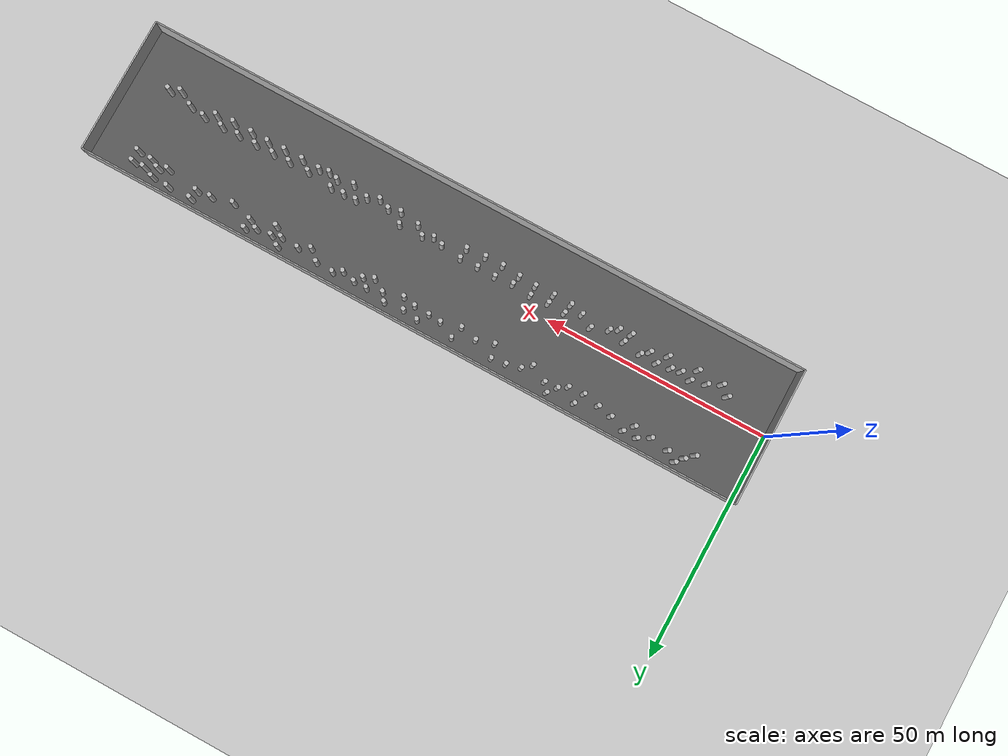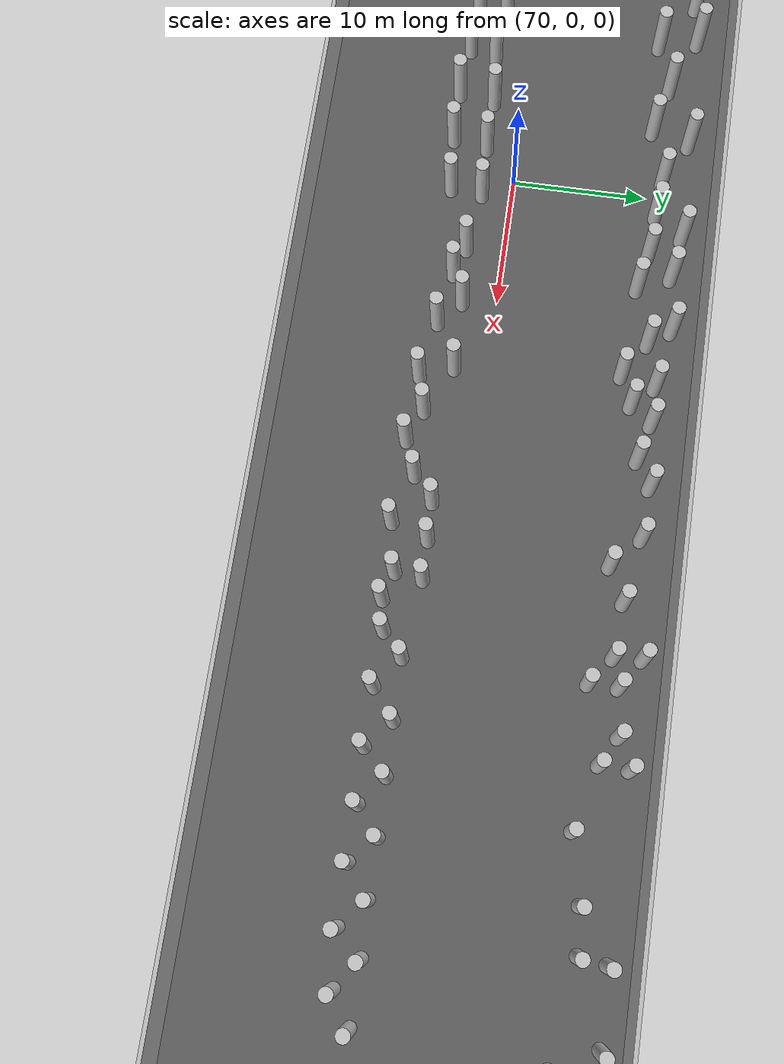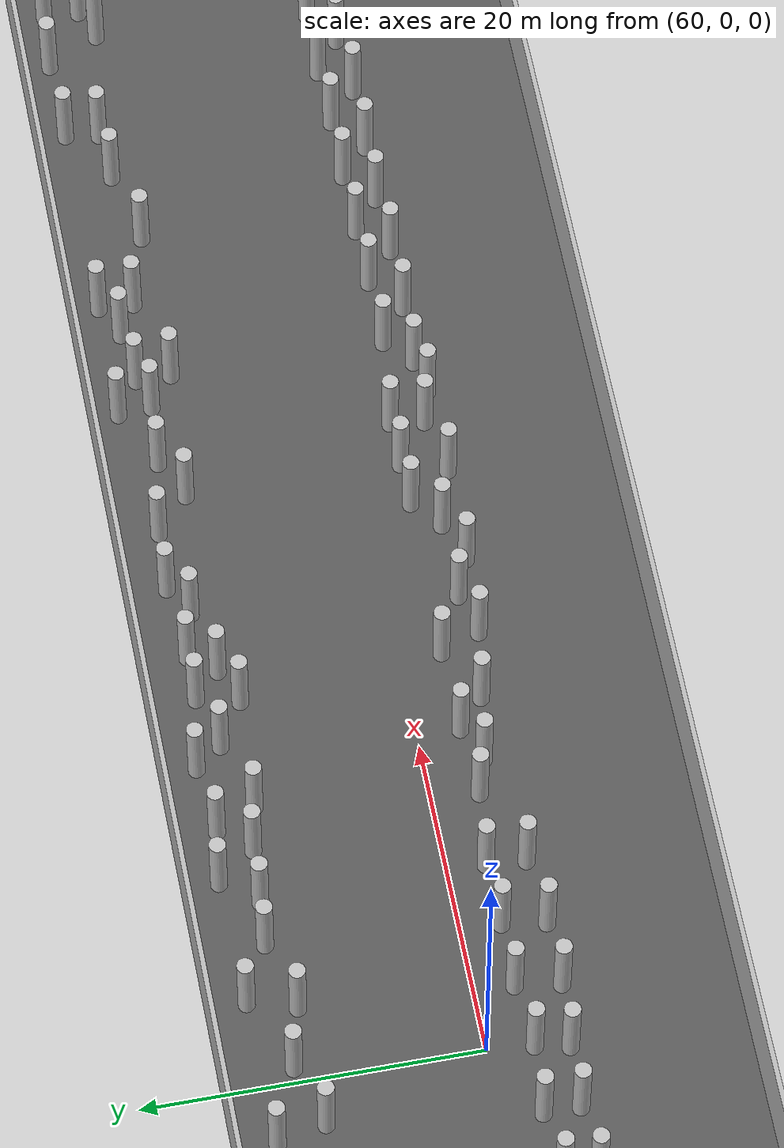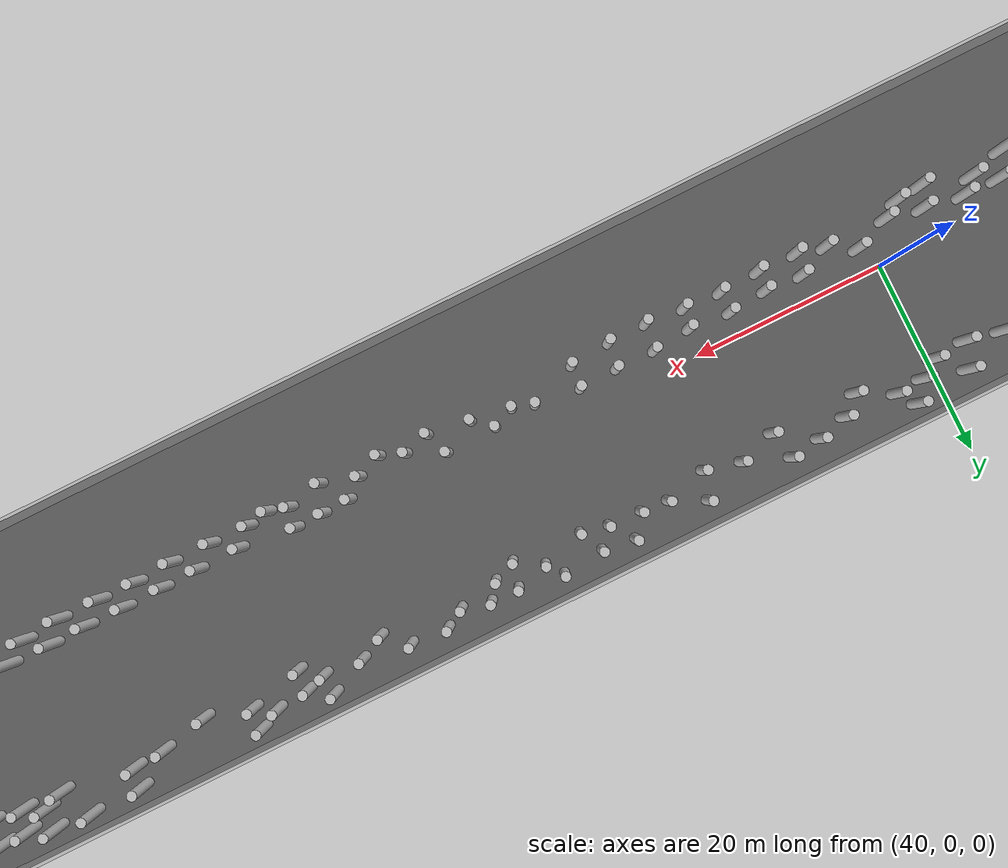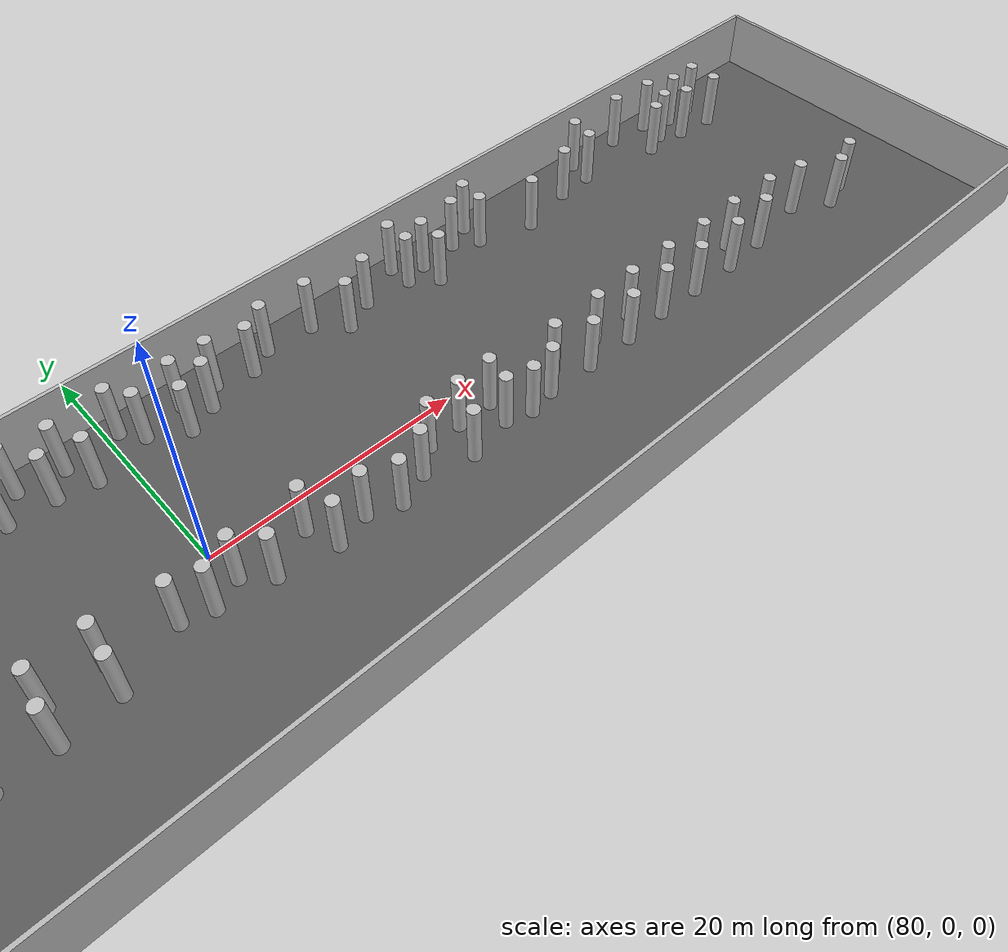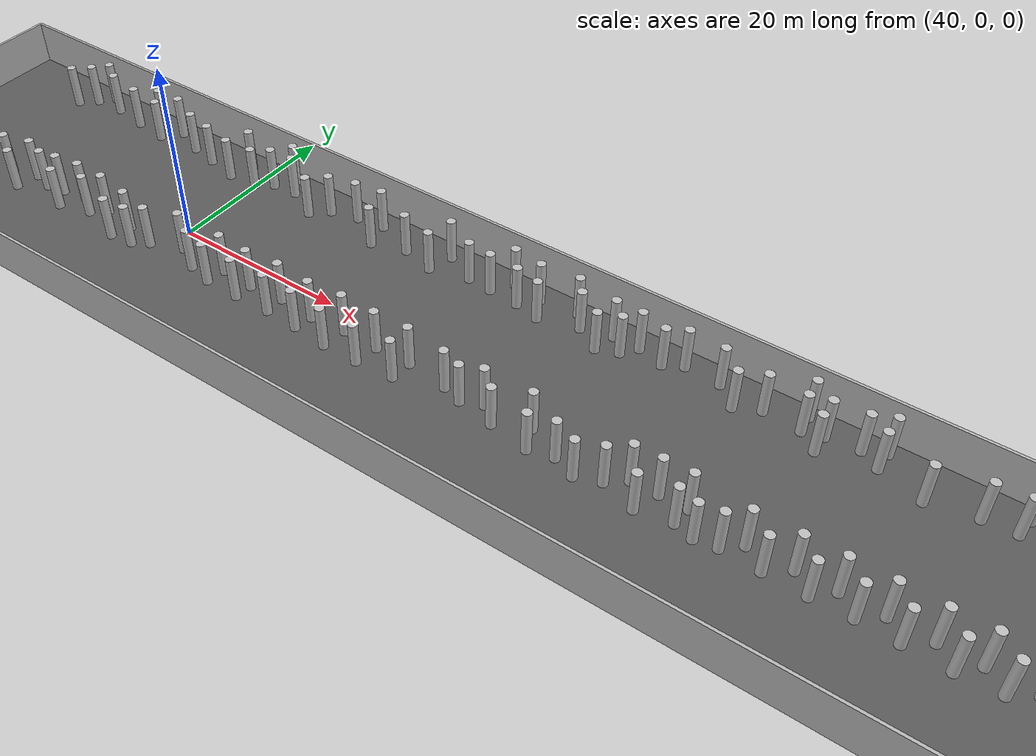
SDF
<?xml version="1.0" ?>
<sdf version="1.5">
  <world name="default">
    <plugin name="gazebo_ros_state" filename="libgazebo_ros_state.so">
      <ros>
        <namespace>/gazebo</namespace>
      </ros>
      <update_rate>20.0</update_rate>
    </plugin>

    <include><uri>model://sun</uri></include>
    <include><uri>model://ground_plane</uri></include>

    <model name="corridor_floor">
      <static>true</static>
      <pose>75 0 0.01 0 0 0</pose>
      <link name="link">
        <collision name="collision">
          <geometry><box><size>150 30 0.02</size></box></geometry>
        </collision>
        <visual name="visual">
          <geometry><box><size>150 30 0.02</size></box></geometry>
          <material>
            <ambient>0.25 0.25 0.25 1</ambient>
            <diffuse>0.35 0.35 0.35 1</diffuse>
          </material>
        </visual>
      </link>
    </model>

    <physics name="default_physics" default="0" type="ode">
      <gravity>0 0 -9.8066</gravity>
      <ode>
        <solver>
          <type>quick</type>
          <iters>10</iters>
          <sor>1.3</sor>
          <use_dynamic_moi_rescaling>0</use_dynamic_moi_rescaling>
        </solver>
        <constraints>
          <cfm>0</cfm>
          <erp>0.2</erp>
          <contact_max_correcting_vel>100</contact_max_correcting_vel>
          <contact_surface_layer>0.001</contact_surface_layer>
        </constraints>
      </ode>
      <max_step_size>0.004</max_step_size>
      <real_time_factor>1</real_time_factor>
      <real_time_update_rate>250</real_time_update_rate>
      <magnetic_field>6.0e-6 2.3e-5 -4.2e-5</magnetic_field>
    </physics>

    <model name="left_wall">
      <static>true</static>
      <pose>75 15.15 2.5 0 0 0</pose>
      <link name="link">
        <collision name="collision">
          <geometry><box><size>150 0.3 5</size></box></geometry>
        </collision>
        <visual name="visual">
          <geometry><box><size>150 0.3 5</size></box></geometry>
        </visual>
      </link>
    </model>

    <model name="right_wall">
      <static>true</static>
      <pose>75 -15.15 2.5 0 0 0</pose>
      <link name="link">
        <collision name="collision">
          <geometry><box><size>150 0.3 5</size></box></geometry>
        </collision>
        <visual name="visual">
          <geometry><box><size>150 0.3 5</size></box></geometry>
        </visual>
      </link>
    </model>

    <model name="start_wall">
      <static>true</static>
      <pose>0 0 2.5 0 0 0</pose>
      <link name="link">
        <collision name="collision">
          <geometry><box><size>0.3 30.3 5</size></box></geometry>
        </collision>
        <visual name="visual">
          <geometry><box><size>0.3 30.3 5</size></box></geometry>
        </visual>
      </link>
    </model>

    <model name="end_wall">
      <static>true</static>
      <pose>150 0 2.5 0 0 0</pose>
      <link name="link">
        <collision name="collision">
          <geometry><box><size>0.3 30.3 5</size></box></geometry>
        </collision>
        <visual name="visual">
          <geometry><box><size>0.3 30.3 5</size></box></geometry>
        </visual>
      </link>
    </model>

    <include><name>cylinder_000</name><uri>model://cylinder_r05_h5</uri><pose>23.540 -2.891 2.5 0 0 0</pose></include>
    <include><name>cylinder_001</name><uri>model://cylinder_r05_h5</uri><pose>28.774 -3.843 2.5 0 0 0</pose></include>
    <include><name>cylinder_002</name><uri>model://cylinder_r05_h5</uri><pose>15.736 -3.521 2.5 0 0 0</pose></include>
    <include><name>cylinder_003</name><uri>model://cylinder_r05_h5</uri><pose>38.093 -3.846 2.5 0 0 0</pose></include>
    <include><name>cylinder_004</name><uri>model://cylinder_r05_h5</uri><pose>44.428 -3.986 2.5 0 0 0</pose></include>
    <include><name>cylinder_005</name><uri>model://cylinder_r05_h5</uri><pose>33.658 -5.204 2.5 0 0 0</pose></include>
    <include><name>cylinder_006</name><uri>model://cylinder_r05_h5</uri><pose>26.573 -2.466 2.5 0 0 0</pose></include>
    <include><name>cylinder_007</name><uri>model://cylinder_r05_h5</uri><pose>30.306 -2.528 2.5 0 0 0</pose></include>
    <include><name>cylinder_008</name><uri>model://cylinder_r05_h5</uri><pose>34.382 -3.139 2.5 0 0 0</pose></include>
    <include><name>cylinder_009</name><uri>model://cylinder_r05_h5</uri><pose>41.693 -2.435 2.5 0 0 0</pose></include>
    <include><name>cylinder_010</name><uri>model://cylinder_r05_h5</uri><pose>25.089 -4.850 2.5 0 0 0</pose></include>
    <include><name>cylinder_011</name><uri>model://cylinder_r05_h5</uri><pose>36.384 -4.925 2.5 0 0 0</pose></include>
    <include><name>cylinder_012</name><uri>model://cylinder_r05_h5</uri><pose>21.417 -3.315 2.5 0 0 0</pose></include>
    <include><name>cylinder_013</name><uri>model://cylinder_r05_h5</uri><pose>18.993 -2.661 2.5 0 0 0</pose></include>
    <include><name>cylinder_014</name><uri>model://cylinder_r05_h5</uri><pose>18.512 -5.234 2.5 0 0 0</pose></include>
    <include><name>cylinder_015</name><uri>model://cylinder_r05_h5</uri><pose>47.291 -4.672 2.5 0 0 0</pose></include>
    <include><name>cylinder_016</name><uri>model://cylinder_r05_h5</uri><pose>47.689 -2.540 2.5 0 0 0</pose></include>
    <include><name>cylinder_017</name><uri>model://cylinder_r05_h5</uri><pose>51.329 -4.738 2.5 0 0 0</pose></include>
    <include><name>cylinder_018</name><uri>model://cylinder_r05_h5</uri><pose>51.517 -2.762 2.5 0 0 0</pose></include>
    <include><name>cylinder_019</name><uri>model://cylinder_r05_h5</uri><pose>55.445 -4.558 2.5 0 0 0</pose></include>
    <include><name>cylinder_020</name><uri>model://cylinder_r05_h5</uri><pose>55.464 -2.401 2.5 0 0 0</pose></include>
    <include><name>cylinder_021</name><uri>model://cylinder_r05_h5</uri><pose>59.264 -4.737 2.5 0 0 0</pose></include>
    <include><name>cylinder_022</name><uri>model://cylinder_r05_h5</uri><pose>59.677 -2.741 2.5 0 0 0</pose></include>
    <include><name>cylinder_023</name><uri>model://cylinder_r05_h5</uri><pose>63.227 -5.058 2.5 0 0 0</pose></include>
    <include><name>cylinder_024</name><uri>model://cylinder_r05_h5</uri><pose>63.629 -2.361 2.5 0 0 0</pose></include>
    <include><name>cylinder_025</name><uri>model://cylinder_r05_h5</uri><pose>67.219 -4.995 2.5 0 0 0</pose></include>
    <include><name>cylinder_026</name><uri>model://cylinder_r05_h5</uri><pose>67.641 -2.403 2.5 0 0 0</pose></include>
    <include><name>cylinder_027</name><uri>model://cylinder_r05_h5</uri><pose>71.379 -4.631 2.5 0 0 0</pose></include>
    <include><name>cylinder_028</name><uri>model://cylinder_r05_h5</uri><pose>71.588 -2.268 2.5 0 0 0</pose></include>
    <include><name>cylinder_029</name><uri>model://cylinder_r05_h5</uri><pose>98.961 -2.520 2.5 0 0 0</pose></include>
    <include><name>cylinder_030</name><uri>model://cylinder_r05_h5</uri><pose>91.793 -5.103 2.5 0 0 0</pose></include>
    <include><name>cylinder_031</name><uri>model://cylinder_r05_h5</uri><pose>98.004 -5.227 2.5 0 0 0</pose></include>
    <include><name>cylinder_032</name><uri>model://cylinder_r05_h5</uri><pose>78.377 -3.505 2.5 0 0 0</pose></include>
    <include><name>cylinder_033</name><uri>model://cylinder_r05_h5</uri><pose>80.573 -2.549 2.5 0 0 0</pose></include>
    <include><name>cylinder_034</name><uri>model://cylinder_r05_h5</uri><pose>96.163 -2.602 2.5 0 0 0</pose></include>
    <include><name>cylinder_035</name><uri>model://cylinder_r05_h5</uri><pose>85.808 -2.443 2.5 0 0 0</pose></include>
    <include><name>cylinder_036</name><uri>model://cylinder_r05_h5</uri><pose>86.756 -4.867 2.5 0 0 0</pose></include>
    <include><name>cylinder_037</name><uri>model://cylinder_r05_h5</uri><pose>94.340 -4.132 2.5 0 0 0</pose></include>
    <include><name>cylinder_038</name><uri>model://cylinder_r05_h5</uri><pose>89.389 -4.168 2.5 0 0 0</pose></include>
    <include><name>cylinder_039</name><uri>model://cylinder_r05_h5</uri><pose>82.424 -4.145 2.5 0 0 0</pose></include>
    <include><name>cylinder_040</name><uri>model://cylinder_r05_h5</uri><pose>103.649 -5.053 2.5 0 0 0</pose></include>
    <include><name>cylinder_041</name><uri>model://cylinder_r05_h5</uri><pose>101.590 -4.491 2.5 0 0 0</pose></include>
    <include><name>cylinder_042</name><uri>model://cylinder_r05_h5</uri><pose>101.883 -2.457 2.5 0 0 0</pose></include>
    <include><name>cylinder_043</name><uri>model://cylinder_r05_h5</uri><pose>76.200 -2.833 2.5 0 0 0</pose></include>
    <include><name>cylinder_044</name><uri>model://cylinder_r05_h5</uri><pose>105.861 -4.640 2.5 0 0 0</pose></include>
    <include><name>cylinder_045</name><uri>model://cylinder_r05_h5</uri><pose>107.575 -3.106 2.5 0 0 0</pose></include>
    <include><name>cylinder_046</name><uri>model://cylinder_r05_h5</uri><pose>109.815 -4.740 2.5 0 0 0</pose></include>
    <include><name>cylinder_047</name><uri>model://cylinder_r05_h5</uri><pose>111.984 -3.050 2.5 0 0 0</pose></include>
    <include><name>cylinder_048</name><uri>model://cylinder_r05_h5</uri><pose>113.974 -4.764 2.5 0 0 0</pose></include>
    <include><name>cylinder_049</name><uri>model://cylinder_r05_h5</uri><pose>115.782 -2.969 2.5 0 0 0</pose></include>
    <include><name>cylinder_050</name><uri>model://cylinder_r05_h5</uri><pose>117.845 -4.588 2.5 0 0 0</pose></include>
    <include><name>cylinder_051</name><uri>model://cylinder_r05_h5</uri><pose>119.858 -2.917 2.5 0 0 0</pose></include>
    <include><name>cylinder_052</name><uri>model://cylinder_r05_h5</uri><pose>121.719 -4.659 2.5 0 0 0</pose></include>
    <include><name>cylinder_053</name><uri>model://cylinder_r05_h5</uri><pose>123.939 -2.950 2.5 0 0 0</pose></include>
    <include><name>cylinder_054</name><uri>model://cylinder_r05_h5</uri><pose>125.960 -4.705 2.5 0 0 0</pose></include>
    <include><name>cylinder_055</name><uri>model://cylinder_r05_h5</uri><pose>127.739 -2.840 2.5 0 0 0</pose></include>
    <include><name>cylinder_056</name><uri>model://cylinder_r05_h5</uri><pose>129.875 -4.374 2.5 0 0 0</pose></include>
    <include><name>cylinder_057</name><uri>model://cylinder_r05_h5</uri><pose>132.144 -2.929 2.5 0 0 0</pose></include>
    <include><name>cylinder_058</name><uri>model://cylinder_r05_h5</uri><pose>10.900 -3.308 2.5 0 0 0</pose></include>
    <include><name>cylinder_059</name><uri>model://cylinder_r05_h5</uri><pose>12.937 -4.973 2.5 0 0 0</pose></include>
    <include><name>cylinder_060</name><uri>model://cylinder_r05_h5</uri><pose>141.096 -4.376 2.5 0 0 0</pose></include>
    <include><name>cylinder_061</name><uri>model://cylinder_r05_h5</uri><pose>135.515 -3.513 2.5 0 0 0</pose></include>
    <include><name>cylinder_062</name><uri>model://cylinder_r05_h5</uri><pose>138.709 -5.264 2.5 0 0 0</pose></include>
    <include><name>cylinder_063</name><uri>model://cylinder_r05_h5</uri><pose>84.801 9.747 2.5 0 0 0</pose></include>
    <include><name>cylinder_064</name><uri>model://cylinder_r05_h5</uri><pose>56.362 12.702 2.5 0 0 0</pose></include>
    <include><name>cylinder_065</name><uri>model://cylinder_r05_h5</uri><pose>68.862 11.154 2.5 0 0 0</pose></include>
    <include><name>cylinder_066</name><uri>model://cylinder_r05_h5</uri><pose>93.084 12.666 2.5 0 0 0</pose></include>
    <include><name>cylinder_067</name><uri>model://cylinder_r05_h5</uri><pose>16.459 12.024 2.5 0 0 0</pose></include>
    <include><name>cylinder_068</name><uri>model://cylinder_r05_h5</uri><pose>39.932 10.289 2.5 0 0 0</pose></include>
    <include><name>cylinder_069</name><uri>model://cylinder_r05_h5</uri><pose>131.267 13.412 2.5 0 0 0</pose></include>
    <include><name>cylinder_070</name><uri>model://cylinder_r05_h5</uri><pose>111.066 12.371 2.5 0 0 0</pose></include>
    <include><name>cylinder_071</name><uri>model://cylinder_r05_h5</uri><pose>44.635 11.701 2.5 0 0 0</pose></include>
    <include><name>cylinder_072</name><uri>model://cylinder_r05_h5</uri><pose>29.637 11.452 2.5 0 0 0</pose></include>
    <include><name>cylinder_073</name><uri>model://cylinder_r05_h5</uri><pose>14.236 13.387 2.5 0 0 0</pose></include>
    <include><name>cylinder_074</name><uri>model://cylinder_r05_h5</uri><pose>71.637 10.929 2.5 0 0 0</pose></include>
    <include><name>cylinder_075</name><uri>model://cylinder_r05_h5</uri><pose>32.855 10.803 2.5 0 0 0</pose></include>
    <include><name>cylinder_076</name><uri>model://cylinder_r05_h5</uri><pose>101.709 11.695 2.5 0 0 0</pose></include>
    <include><name>cylinder_077</name><uri>model://cylinder_r05_h5</uri><pose>91.165 11.566 2.5 0 0 0</pose></include>
    <include><name>cylinder_078</name><uri>model://cylinder_r05_h5</uri><pose>87.044 10.680 2.5 0 0 0</pose></include>
    <include><name>cylinder_079</name><uri>model://cylinder_r05_h5</uri><pose>136.857 10.090 2.5 0 0 0</pose></include>
    <include><name>cylinder_080</name><uri>model://cylinder_r05_h5</uri><pose>75.016 10.736 2.5 0 0 0</pose></include>
    <include><name>cylinder_081</name><uri>model://cylinder_r05_h5</uri><pose>20.551 11.355 2.5 0 0 0</pose></include>
    <include><name>cylinder_082</name><uri>model://cylinder_r05_h5</uri><pose>88.305 12.275 2.5 0 0 0</pose></include>
    <include><name>cylinder_083</name><uri>model://cylinder_r05_h5</uri><pose>135.043 13.147 2.5 0 0 0</pose></include>
    <include><name>cylinder_084</name><uri>model://cylinder_r05_h5</uri><pose>11.139 10.317 2.5 0 0 0</pose></include>
    <include><name>cylinder_085</name><uri>model://cylinder_r05_h5</uri><pose>50.092 11.491 2.5 0 0 0</pose></include>
    <include><name>cylinder_086</name><uri>model://cylinder_r05_h5</uri><pose>107.686 9.886 2.5 0 0 0</pose></include>
    <include><name>cylinder_087</name><uri>model://cylinder_r05_h5</uri><pose>60.850 10.941 2.5 0 0 0</pose></include>
    <include><name>cylinder_088</name><uri>model://cylinder_r05_h5</uri><pose>80.853 13.029 2.5 0 0 0</pose></include>
    <include><name>cylinder_089</name><uri>model://cylinder_r05_h5</uri><pose>48.241 9.861 2.5 0 0 0</pose></include>
    <include><name>cylinder_090</name><uri>model://cylinder_r05_h5</uri><pose>105.665 11.415 2.5 0 0 0</pose></include>
    <include><name>cylinder_091</name><uri>model://cylinder_r05_h5</uri><pose>105.520 13.455 2.5 0 0 0</pose></include>
    <include><name>cylinder_092</name><uri>model://cylinder_r05_h5</uri><pose>122.448 11.014 2.5 0 0 0</pose></include>
    <include><name>cylinder_093</name><uri>model://cylinder_r05_h5</uri><pose>53.197 12.278 2.5 0 0 0</pose></include>
    <include><name>cylinder_094</name><uri>model://cylinder_r05_h5</uri><pose>43.285 13.446 2.5 0 0 0</pose></include>
    <include><name>cylinder_095</name><uri>model://cylinder_r05_h5</uri><pose>24.511 10.889 2.5 0 0 0</pose></include>
    <include><name>cylinder_096</name><uri>model://cylinder_r05_h5</uri><pose>57.065 9.776 2.5 0 0 0</pose></include>
    <include><name>cylinder_097</name><uri>model://cylinder_r05_h5</uri><pose>107.692 12.011 2.5 0 0 0</pose></include>
    <include><name>cylinder_098</name><uri>model://cylinder_r05_h5</uri><pose>140.083 12.245 2.5 0 0 0</pose></include>
    <include><name>cylinder_099</name><uri>model://cylinder_r05_h5</uri><pose>96.930 12.469 2.5 0 0 0</pose></include>
    <include><name>cylinder_100</name><uri>model://cylinder_r05_h5</uri><pose>134.947 11.010 2.5 0 0 0</pose></include>
    <include><name>cylinder_101</name><uri>model://cylinder_r05_h5</uri><pose>36.496 10.044 2.5 0 0 0</pose></include>
    <include><name>cylinder_102</name><uri>model://cylinder_r05_h5</uri><pose>113.184 13.367 2.5 0 0 0</pose></include>
    <include><name>cylinder_103</name><uri>model://cylinder_r05_h5</uri><pose>99.195 10.460 2.5 0 0 0</pose></include>
    <include><name>cylinder_104</name><uri>model://cylinder_r05_h5</uri><pose>12.877 11.850 2.5 0 0 0</pose></include>
    <include><name>cylinder_105</name><uri>model://cylinder_r05_h5</uri><pose>125.971 13.291 2.5 0 0 0</pose></include>
    <include><name>cylinder_106</name><uri>model://cylinder_r05_h5</uri><pose>77.792 10.163 2.5 0 0 0</pose></include>
    <include><name>cylinder_107</name><uri>model://cylinder_r05_h5</uri><pose>137.484 12.189 2.5 0 0 0</pose></include>
    <include><name>cylinder_108</name><uri>model://cylinder_r05_h5</uri><pose>76.603 12.584 2.5 0 0 0</pose></include>
    <include><name>cylinder_109</name><uri>model://cylinder_r05_h5</uri><pose>41.768 11.520 2.5 0 0 0</pose></include>
    <include><name>cylinder_110</name><uri>model://cylinder_r05_h5</uri><pose>113.105 11.245 2.5 0 0 0</pose></include>
    <include><name>cylinder_111</name><uri>model://cylinder_r05_h5</uri><pose>117.707 9.962 2.5 0 0 0</pose></include>
    <include><name>cylinder_112</name><uri>model://cylinder_r05_h5</uri><pose>125.647 11.266 2.5 0 0 0</pose></include>
    <include><name>cylinder_113</name><uri>model://cylinder_r05_h5</uri><pose>132.974 10.219 2.5 0 0 0</pose></include>
    <include><name>cylinder_114</name><uri>model://cylinder_r05_h5</uri><pose>82.092 11.398 2.5 0 0 0</pose></include>
    <include><name>cylinder_115</name><uri>model://cylinder_r05_h5</uri><pose>65.377 12.853 2.5 0 0 0</pose></include>
    <include><name>cylinder_116</name><uri>model://cylinder_r05_h5</uri><pose>73.255 13.054 2.5 0 0 0</pose></include>
    <include><name>cylinder_117</name><uri>model://cylinder_r05_h5</uri><pose>64.553 10.033 2.5 0 0 0</pose></include>
    <include><name>cylinder_118</name><uri>model://cylinder_r05_h5</uri><pose>26.242 12.870 2.5 0 0 0</pose></include>
    <include><name>cylinder_119</name><uri>model://cylinder_r05_h5</uri><pose>37.408 12.679 2.5 0 0 0</pose></include>
    <include><name>cylinder_120</name><uri>model://cylinder_r05_h5</uri><pose>23.112 12.800 2.5 0 0 0</pose></include>
    <include><name>cylinder_121</name><uri>model://cylinder_r05_h5</uri><pose>140.209 9.787 2.5 0 0 0</pose></include>
    <include><name>cylinder_122</name><uri>model://cylinder_r05_h5</uri><pose>85.417 12.267 2.5 0 0 0</pose></include>

  </world>
</sdf>

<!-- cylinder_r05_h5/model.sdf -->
<sdf version="1.5">
  <model name="cylinder_r05_h5">
    <static>true</static>
    <link name="link">
      <collision name="collision">
        <geometry>
          <cylinder>
            <radius>0.5</radius>
            <length>5</length>
          </cylinder>
        </geometry>
      </collision>
      <visual name="visual">
        <geometry>
          <cylinder>
            <radius>0.5</radius>
            <length>5</length>
          </cylinder>
        </geometry>
        <material>
          <ambient>0.5 0.5 0.5 1</ambient>
          <diffuse>0.75 0.75 0.75 1</diffuse>
        </material>
      </visual>
    </link>
  </model>
</sdf>
